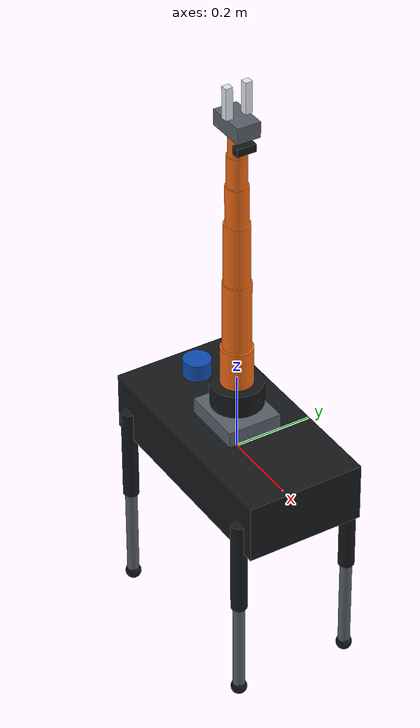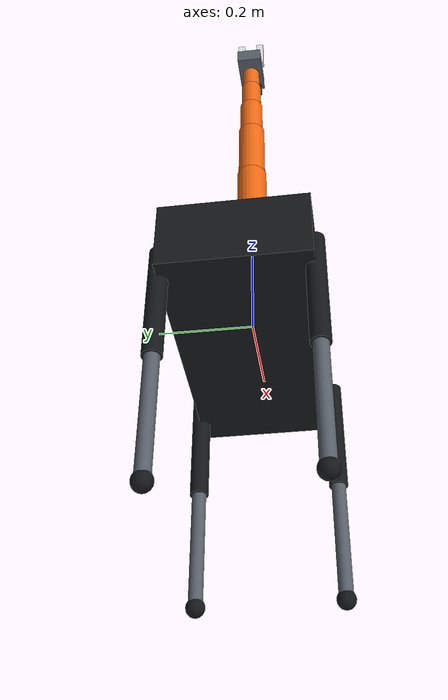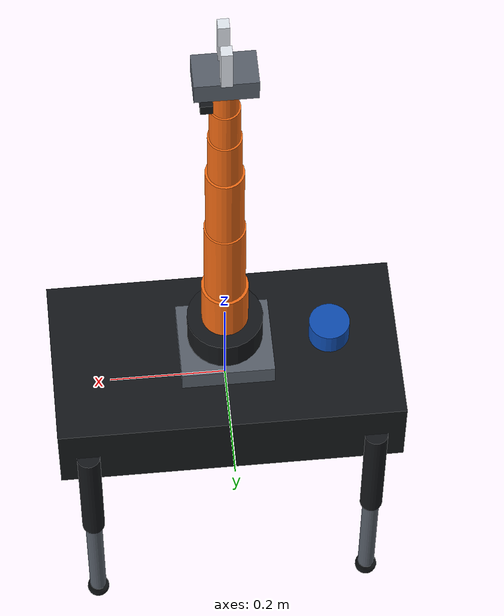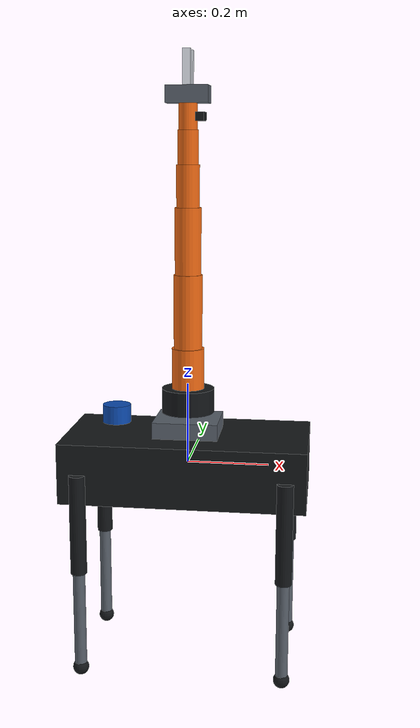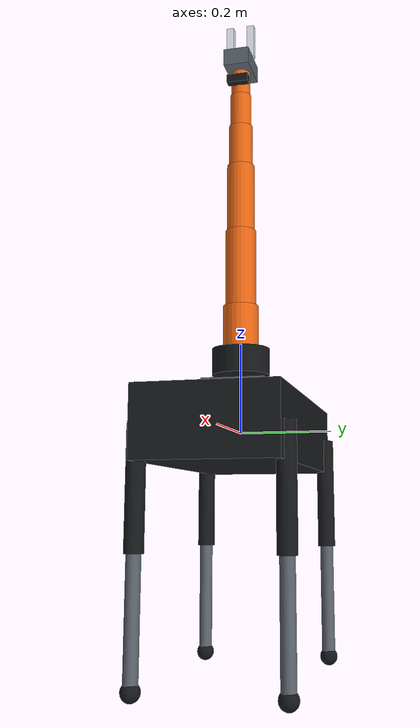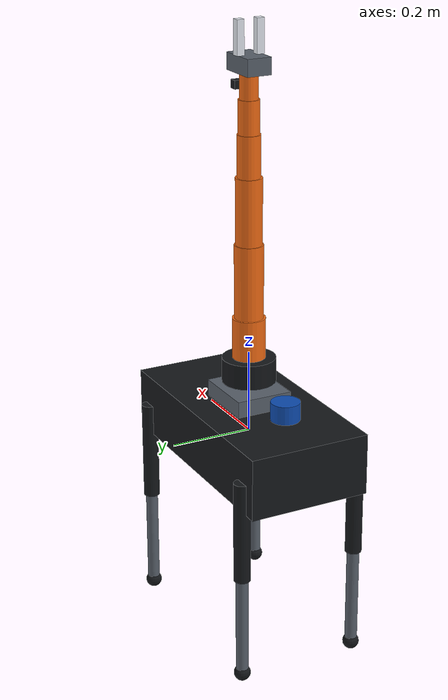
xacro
<?xml version="1.0"?>
<robot xmlns:xacro="http://www.ros.org/wiki/xacro" name="quadruped_arm_system">
  <xacro:arg name="control_backend" default="mock"/>
  <xacro:arg name="controllers_file" default="config/controllers.yaml"/>
  <xacro:arg name="mujoco_model_path" default="mujoco/robot_system.xml"/>
  <xacro:arg name="mujoco_headless" default="false"/>
  <xacro:arg name="mujoco_auto_register_cameras" default="true"/>
  <xacro:arg name="vision_enabled" default="false"/>

  <xacro:include filename="materials.xacro"/>
  <xacro:include filename="inertial_macros.xacro"/>
  <xacro:include filename="quadruped_base.xacro"/>
  <xacro:include filename="manipulator.xacro"/>
  <xacro:include filename="system.ros2_control.xacro"/>
  <xacro:include filename="vision_sensors.xacro"/>

  <xacro:property name="backend" value="$(arg control_backend)"/>
  <xacro:unless value="${backend in ['mock', 'gazebo', 'mujoco']}">
    <xacro:error message="control_backend must be mock, gazebo, or mujoco"/>
  </xacro:unless>

  <xacro:quadruped_base/>
  <xacro:manipulator_arm parent_link="base_link" prefix="arm_" xyz="0 0 0.095" rpy="0 0 0"/>

  <joint name="lidar_mount_joint" type="fixed">
    <parent link="base_link"/><child link="lidar_link"/><origin xyz="-0.18 0 0.12"/>
  </joint>
  <link name="lidar_link">
    <visual><geometry><cylinder radius="0.035" length="0.045"/></geometry><material name="sensor_blue"/></visual>
    <collision><geometry><cylinder radius="0.033" length="0.043"/></geometry></collision>
    <xacro:cylinder_inertial mass="0.12" radius="0.035" length="0.045"/>
  </link>

  <joint name="camera_mount_joint" type="fixed">
    <parent link="arm_link_6"/><child link="camera_link"/><origin xyz="0.03 0 0.03" rpy="0 ${-pi/2} 0"/>
  </joint>
  <link name="camera_link">
    <visual><geometry><box size="0.02 0.05 0.02"/></geometry><material name="body_black"/></visual>
    <collision><geometry><box size="0.018 0.048 0.018"/></geometry></collision>
    <xacro:box_inertial mass="0.05" x="0.02" y="0.05" z="0.02"/>
  </link>

  <xacro:if value="$(arg vision_enabled)">
    <xacro:vision_frames enabled="true"/>
  </xacro:if>
  <xacro:system_ros2_control name="IntegratedRobotSystem" backend="${backend}" mujoco_model_path="$(arg mujoco_model_path)" mujoco_headless="$(arg mujoco_headless)" mujoco_auto_register_cameras="$(arg mujoco_auto_register_cameras)"/>

  <xacro:if value="${backend == 'gazebo'}">
    <gazebo>
      <plugin filename="gz_ros2_control-system" name="gz_ros2_control::GazeboSimROS2ControlPlugin">
        <parameters>$(arg controllers_file)</parameters>
      </plugin>
    </gazebo>
  </xacro:if>
</robot>

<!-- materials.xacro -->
<robot xmlns:xacro="http://www.ros.org/wiki/xacro">
  <material name="body_black"><color rgba="0.08 0.09 0.10 1"/></material>
  <material name="joint_grey"><color rgba="0.35 0.38 0.42 1"/></material>
  <material name="arm_orange"><color rgba="0.95 0.42 0.08 1"/></material>
  <material name="gripper_white"><color rgba="0.90 0.92 0.95 1"/></material>
  <material name="sensor_blue"><color rgba="0.05 0.30 0.70 1"/></material>
</robot>

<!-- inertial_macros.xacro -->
<robot xmlns:xacro="http://www.ros.org/wiki/xacro">
  <xacro:macro name="box_inertial" params="mass x y z origin_xyz:='0 0 0'">
    <inertial>
      <origin xyz="${origin_xyz}" rpy="0 0 0"/>
      <mass value="${mass}"/>
      <inertia ixx="${mass * (y*y + z*z) / 12.0}" ixy="0" ixz="0"
               iyy="${mass * (x*x + z*z) / 12.0}" iyz="0"
               izz="${mass * (x*x + y*y) / 12.0}"/>
    </inertial>
  </xacro:macro>

  <xacro:macro name="cylinder_inertial" params="mass radius length origin_xyz:='0 0 0'">
    <inertial>
      <origin xyz="${origin_xyz}" rpy="0 0 0"/>
      <mass value="${mass}"/>
      <inertia ixx="${mass * (3.0*radius*radius + length*length) / 12.0}" ixy="0" ixz="0"
               iyy="${mass * (3.0*radius*radius + length*length) / 12.0}" iyz="0"
               izz="${mass * radius*radius / 2.0}"/>
    </inertial>
  </xacro:macro>

  <xacro:macro name="sphere_inertial" params="mass radius origin_xyz:='0 0 0'">
    <inertial>
      <origin xyz="${origin_xyz}" rpy="0 0 0"/>
      <mass value="${mass}"/>
      <inertia ixx="${0.4*mass*radius*radius}" ixy="0" ixz="0"
               iyy="${0.4*mass*radius*radius}" iyz="0"
               izz="${0.4*mass*radius*radius}"/>
    </inertial>
  </xacro:macro>
</robot>

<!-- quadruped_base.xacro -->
<robot xmlns:xacro="http://www.ros.org/wiki/xacro">
  <xacro:property name="base_length" value="0.60"/>
  <xacro:property name="base_width" value="0.30"/>
  <xacro:property name="base_height" value="0.15"/>
  <xacro:property name="thigh_length" value="0.25"/>
  <xacro:property name="calf_length" value="0.25"/>

  <xacro:macro name="quadruped_leg" params="prefix x_sign y_sign">
    <joint name="${prefix}_hip_joint" type="revolute">
      <parent link="base_link"/><child link="${prefix}_hip_link"/>
      <origin xyz="${x_sign*0.25} ${y_sign*0.10} 0" rpy="0 0 0"/>
      <axis xyz="1 0 0"/><limit lower="-0.8" upper="0.8" effort="20" velocity="10"/>
    </joint>
    <link name="${prefix}_hip_link">
      <visual><geometry><box size="0.08 0.04 0.04"/></geometry><material name="joint_grey"/></visual>
      <collision><geometry><box size="0.08 0.04 0.04"/></geometry></collision>
      <xacro:box_inertial mass="0.20" x="0.08" y="0.04" z="0.04"/>
    </link>

    <joint name="${prefix}_thigh_joint" type="revolute">
      <parent link="${prefix}_hip_link"/><child link="${prefix}_thigh_link"/>
      <origin xyz="0 ${y_sign*0.05} 0" rpy="0 0 0"/>
      <axis xyz="0 1 0"/><limit lower="-1.0" upper="4.0" effort="30" velocity="10"/>
    </joint>
    <link name="${prefix}_thigh_link">
      <visual><origin xyz="0 0 -0.125"/><geometry><cylinder radius="0.02" length="0.25"/></geometry><material name="body_black"/></visual>
      <collision><origin xyz="0 0 -0.125"/><geometry><cylinder radius="0.02" length="0.25"/></geometry></collision>
      <xacro:cylinder_inertial mass="0.70" radius="0.02" length="0.25" origin_xyz="0 0 -0.125"/>
    </link>

    <joint name="${prefix}_calf_joint" type="revolute">
      <parent link="${prefix}_thigh_link"/><child link="${prefix}_calf_link"/>
      <origin xyz="0 0 -0.25" rpy="0 0 0"/>
      <axis xyz="0 1 0"/><limit lower="-2.8" upper="2.8" effort="30" velocity="10"/>
    </joint>
    <link name="${prefix}_calf_link">
      <visual><origin xyz="0 0 -0.125"/><geometry><cylinder radius="0.015" length="0.25"/></geometry><material name="joint_grey"/></visual>
      <collision><origin xyz="0 0 -0.125"/><geometry><cylinder radius="0.015" length="0.25"/></geometry></collision>
      <xacro:cylinder_inertial mass="0.50" radius="0.015" length="0.25" origin_xyz="0 0 -0.125"/>
    </link>

    <joint name="${prefix}_foot_fixed" type="fixed">
      <parent link="${prefix}_calf_link"/><child link="${prefix}_foot"/>
      <origin xyz="0 0 -0.25"/>
    </joint>
    <link name="${prefix}_foot">
      <visual><geometry><sphere radius="0.02"/></geometry><material name="body_black"/></visual>
      <collision><geometry><sphere radius="0.02"/></geometry></collision>
      <xacro:sphere_inertial mass="0.10" radius="0.02"/>
    </link>
    <gazebo reference="${prefix}_foot"><mu1 value="1.0"/><mu2 value="1.0"/></gazebo>
  </xacro:macro>

  <xacro:macro name="quadruped_base">
    <link name="base_footprint">
      <xacro:box_inertial mass="0.0001" x="0.01" y="0.01" z="0.01"/>
    </link>
    <joint name="base_footprint_joint" type="fixed">
      <parent link="base_footprint"/><child link="base_link"/>
    </joint>
    <link name="base_link">
      <visual><geometry><box size="0.60 0.30 0.15"/></geometry><material name="body_black"/></visual>
      <collision><geometry><box size="0.60 0.30 0.15"/></geometry></collision>
      <xacro:box_inertial mass="6.0" x="0.60" y="0.30" z="0.15"/>
    </link>
    <xacro:quadruped_leg prefix="fr" x_sign="1" y_sign="-1"/>
    <xacro:quadruped_leg prefix="fl" x_sign="1" y_sign="1"/>
    <xacro:quadruped_leg prefix="rr" x_sign="-1" y_sign="-1"/>
    <xacro:quadruped_leg prefix="rl" x_sign="-1" y_sign="1"/>
  </xacro:macro>
</robot>

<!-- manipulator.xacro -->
<robot xmlns:xacro="http://www.ros.org/wiki/xacro">
  <xacro:macro name="arm_segment" params="name length radius mass material:='arm_orange'">
    <link name="${name}">
      <visual><origin xyz="0 0 ${length/2}"/><geometry><cylinder radius="${radius}" length="${length}"/></geometry><material name="${material}"/></visual>
      <collision><origin xyz="0 0 ${length/2}"/><geometry><cylinder radius="${radius*0.90}" length="${length*0.96}"/></geometry></collision>
      <xacro:cylinder_inertial mass="${mass}" radius="${radius}" length="${length}" origin_xyz="0 0 ${length/2}"/>
    </link>
  </xacro:macro>

  <xacro:macro name="manipulator_arm" params="parent_link prefix:='arm_' xyz:='0 0 0.095' rpy:='0 0 0'">
    <joint name="${prefix}mount_joint" type="fixed">
      <parent link="${parent_link}"/><child link="${prefix}mount"/><origin xyz="${xyz}" rpy="${rpy}"/>
    </joint>
    <link name="${prefix}mount">
      <visual><geometry><box size="0.16 0.14 0.04"/></geometry><material name="joint_grey"/></visual>
      <collision><geometry><box size="0.15 0.13 0.038"/></geometry></collision>
      <xacro:box_inertial mass="0.30" x="0.16" y="0.14" z="0.04"/>
    </link>
    <joint name="${prefix}base_fixed" type="fixed">
      <parent link="${prefix}mount"/><child link="${prefix}base_link"/><origin xyz="0 0 0.035"/>
    </joint>
    <link name="${prefix}base_link">
      <visual><origin xyz="0 0 0.03"/><geometry><cylinder radius="0.065" length="0.06"/></geometry><material name="body_black"/></visual>
      <collision><origin xyz="0 0 0.03"/><geometry><cylinder radius="0.06" length="0.06"/></geometry></collision>
      <xacro:cylinder_inertial mass="0.45" radius="0.065" length="0.06" origin_xyz="0 0 0.03"/>
    </link>

    <xacro:arm_segment name="${prefix}link_1" length="0.10" radius="0.040" mass="0.35"/>
    <joint name="${prefix}joint_1" type="revolute"><parent link="${prefix}base_link"/><child link="${prefix}link_1"/><origin xyz="0 0 0.06"/><axis xyz="0 0 1"/><limit lower="-3.14159" upper="3.14159" effort="35" velocity="2.0"/></joint>
    <xacro:arm_segment name="${prefix}link_2" length="0.18" radius="0.035" mass="0.55"/>
    <joint name="${prefix}joint_2" type="revolute"><parent link="${prefix}link_1"/><child link="${prefix}link_2"/><origin xyz="0 0 0.10"/><axis xyz="0 1 0"/><limit lower="-1.5708" upper="1.5708" effort="35" velocity="2.0"/></joint>
    <xacro:arm_segment name="${prefix}link_3" length="0.16" radius="0.032" mass="0.45"/>
    <joint name="${prefix}joint_3" type="revolute"><parent link="${prefix}link_2"/><child link="${prefix}link_3"/><origin xyz="0 0 0.18"/><axis xyz="0 1 0"/><limit lower="-2.0944" upper="2.0944" effort="30" velocity="2.2"/></joint>
    <xacro:arm_segment name="${prefix}link_4" length="0.10" radius="0.028" mass="0.28"/>
    <joint name="${prefix}joint_4" type="revolute"><parent link="${prefix}link_3"/><child link="${prefix}link_4"/><origin xyz="0 0 0.16"/><axis xyz="1 0 0"/><limit lower="-3.14159" upper="3.14159" effort="20" velocity="2.8"/></joint>
    <xacro:arm_segment name="${prefix}link_5" length="0.08" radius="0.025" mass="0.20"/>
    <joint name="${prefix}joint_5" type="revolute"><parent link="${prefix}link_4"/><child link="${prefix}link_5"/><origin xyz="0 0 0.10"/><axis xyz="0 1 0"/><limit lower="-1.5708" upper="1.5708" effort="15" velocity="3.0"/></joint>
    <xacro:arm_segment name="${prefix}link_6" length="0.06" radius="0.022" mass="0.15"/>
    <joint name="${prefix}joint_6" type="revolute"><parent link="${prefix}link_5"/><child link="${prefix}link_6"/><origin xyz="0 0 0.08"/><axis xyz="0 0 1"/><limit lower="-3.14159" upper="3.14159" effort="12" velocity="3.0"/></joint>

    <joint name="${prefix}tool0_fixed" type="fixed"><parent link="${prefix}link_6"/><child link="${prefix}tool0"/><origin xyz="0 0 0.06"/></joint>
    <link name="${prefix}tool0"><visual><geometry><sphere radius="0.015"/></geometry><material name="sensor_blue"/></visual><collision><geometry><sphere radius="0.012"/></geometry></collision><xacro:sphere_inertial mass="0.03" radius="0.015"/></link>
    <joint name="gripper_base_fixed" type="fixed"><parent link="${prefix}tool0"/><child link="gripper_base_link"/></joint>
    <link name="gripper_base_link"><visual><origin xyz="0 0 0.02"/><geometry><box size="0.10 0.06 0.04"/></geometry><material name="joint_grey"/></visual><collision><origin xyz="0 0 0.02"/><geometry><box size="0.09 0.055 0.038"/></geometry></collision><xacro:box_inertial mass="0.16" x="0.10" y="0.06" z="0.04" origin_xyz="0 0 0.02"/></link>

    <joint name="gripper_left_joint" type="prismatic"><parent link="gripper_base_link"/><child link="gripper_left_finger"/><origin xyz="0 0.025 0.04"/><axis xyz="0 1 0"/><limit lower="0" upper="0.03" effort="15" velocity="0.15"/></joint>
    <link name="gripper_left_finger"><visual><origin xyz="0 0 0.04"/><geometry><box size="0.018 0.018 0.08"/></geometry><material name="gripper_white"/></visual><collision><origin xyz="0 0 0.04"/><geometry><box size="0.016 0.016 0.076"/></geometry></collision><xacro:box_inertial mass="0.06" x="0.018" y="0.018" z="0.08" origin_xyz="0 0 0.04"/></link>
    <joint name="gripper_right_joint" type="prismatic"><parent link="gripper_base_link"/><child link="gripper_right_finger"/><origin xyz="0 -0.025 0.04"/><axis xyz="0 -1 0"/><limit lower="0" upper="0.03" effort="15" velocity="0.15"/></joint>
    <link name="gripper_right_finger"><visual><origin xyz="0 0 0.04"/><geometry><box size="0.018 0.018 0.08"/></geometry><material name="gripper_white"/></visual><collision><origin xyz="0 0 0.04"/><geometry><box size="0.016 0.016 0.076"/></geometry></collision><xacro:box_inertial mass="0.06" x="0.018" y="0.018" z="0.08" origin_xyz="0 0 0.04"/></link>
  </xacro:macro>
</robot>
